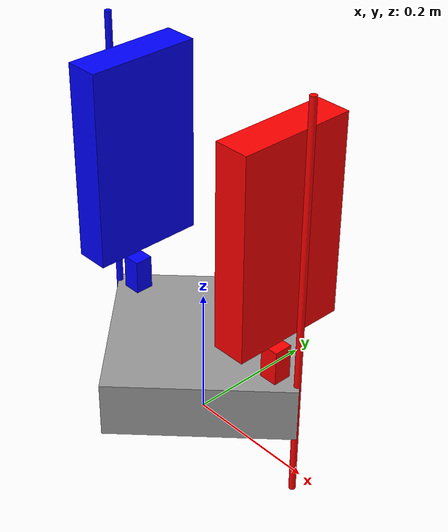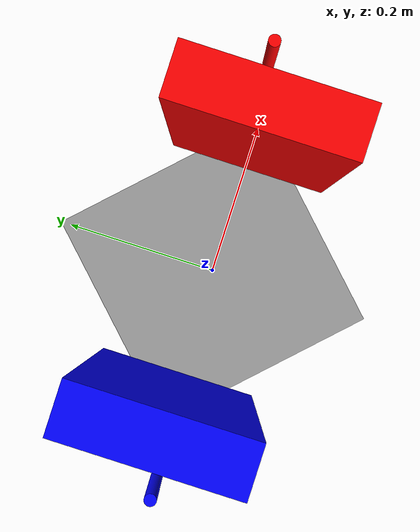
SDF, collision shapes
<?xml version='1.0'?>
<sdf version='1.6'>

  <model name='ComplexAquaShokoTwoLegs'>

    <link name='Baselink'>
      <pose frame=''>0 0 0.1 0 -0 0</pose>
      <inertial>
        <mass>2.564</mass>
        <inertia>
          <ixx>0.062</ixx>
          <ixy>0</ixy>
          <ixz>0</ixz>
          <iyy>0.062</iyy>
          <iyz>0</iyz>
          <izz>0.048</izz>
        </inertia>
        <pose frame=''>0 0 0 0 -0 0</pose>
      </inertial>

      <velocity_decay>
        <linear>0.01</linear>
        <angular>0.002</angular>
      </velocity_decay>

      <self_collide>0</self_collide>
      <kinematic>0</kinematic>
      <enable_wind>0</enable_wind>
      <gravity>1</gravity>

      <visual name='visual'>
        <pose frame=''>0 0 -0.064 0 -0 0</pose>
        <geometry>
          <mesh>
            <uri>model://ComplexAquaShokoLongLeg/meshes/BaseLink.dae</uri>
            <scale>1 1 1</scale>
          </mesh>
        </geometry>
        <material>
          <lighting>1</lighting>
          <script>
            <uri>file://media/materials/scripts/gazebo.material</uri>
            <name>Gazebo/Grey</name>
          </script>
          <ambient>0 0 0 0</ambient>
          <diffuse>0.7 0.7 0.7 1</diffuse>
          <specular>0.01 0.01 0.01 1</specular>
          <emissive>0 0 0 1</emissive>
          <shader type='vertex'>
            <normal_map>__default__</normal_map>
          </shader>
        </material>
        <transparency>0</transparency>
        <cast_shadows>1</cast_shadows>
      </visual>
      <collision name='collision'>
        <laser_retro>0</laser_retro>
        <max_contacts>10</max_contacts>
        <pose frame=''>0 0 0 0 -0 0.785</pose>
        <geometry>
          <box>
            <size>0.27 0.27 0.084</size>
          </box>
        </geometry>
        <surface>
          <friction>
            <ode>
              <mu>1</mu>
              <mu2>1</mu2>
              <fdir1>0 0 0</fdir1>
              <slip1>0</slip1>
              <slip2>0</slip2>
            </ode>
            <torsional>
              <coefficient>1</coefficient>
              <patch_radius>0</patch_radius>
              <surface_radius>0</surface_radius>
              <use_patch_radius>1</use_patch_radius>
              <ode>
                <slip>0</slip>
              </ode>
            </torsional>
          </friction>
          <bounce>
            <restitution_coefficient>0</restitution_coefficient>
            <threshold>1e+06</threshold>
          </bounce>
          <contact>
            <collide_without_contact>0</collide_without_contact>
            <collide_without_contact_bitmask>1</collide_without_contact_bitmask>
            <collide_bitmask>1</collide_bitmask>
            <ode>
              <soft_cfm>0</soft_cfm>
              <soft_erp>0.8</soft_erp>
              <kp>1e+13</kp>
              <kd>1</kd>
              <max_vel>0.01</max_vel>
              <min_depth>0</min_depth>
            </ode>
            <bullet>
              <split_impulse>1</split_impulse>
              <split_impulse_penetration_threshold>-0.01</split_impulse_penetration_threshold>
              <soft_cfm>0</soft_cfm>
              <soft_erp>0.8</soft_erp>
              <kp>1e+13</kp>
              <kd>1</kd>
            </bullet>
          </contact>
        </surface>
      </collision>
    </link>

    <link name='HormToHorn1'>
      <pose frame=''>0.145 0 0.17 0 -0 3.14</pose>
      <inertial>
        <mass>0.003</mass>
        <inertia>
          <ixx>1e-3</ixx>
          <ixy>0</ixy>
          <ixz>0</ixz>
          <iyy>1e-3</iyy>
          <iyz>0</iyz>
          <izz>1e-3</izz>
        </inertia>
        <pose frame=''>0 0 0 0 -0 0</pose>
      </inertial>
      <self_collide>0</self_collide>
      <kinematic>0</kinematic>
      <enable_wind>0</enable_wind>
      <gravity>1</gravity>
      <visual name='visual'>
        <pose frame=''>0 0 -0.0535 0 -0 0</pose>
        <geometry>
          <mesh>
            <uri>model://ComplexAquaShokoLongLeg/meshes/HornToHornLink.dae</uri>
            <scale>1 1 1</scale>
          </mesh>
        </geometry>
        <material>
          <lighting>1</lighting>
          <script>
            <uri>file://media/materials/scripts/gazebo.material</uri>
            <name>Gazebo/Grey</name>
          </script>
          <ambient>1 0 0 1</ambient>
          <diffuse>0.7 0.7 0.7 1</diffuse>
          <specular>0.01 0.01 0.01 1</specular>
          <emissive>0 0 0 1</emissive>
          <shader type='vertex'>
            <normal_map>__default__</normal_map>
          </shader>
        </material>
        <transparency>0</transparency>
        <cast_shadows>1</cast_shadows>
      </visual>
      <collision name='collision'>
        <laser_retro>0</laser_retro>
        <max_contacts>10</max_contacts>
        <pose frame=''>0 0 0 0 -0 0</pose>
        <geometry>
          <box>
            <size>0.028 0.028 0.053</size>
          </box>
        </geometry>
        <surface>
          <friction>
            <ode>
              <mu>1</mu>
              <mu2>1</mu2>
              <fdir1>0 0 0</fdir1>
              <slip1>0</slip1>
              <slip2>0</slip2>
            </ode>
            <torsional>
              <coefficient>1</coefficient>
              <patch_radius>0</patch_radius>
              <surface_radius>0</surface_radius>
              <use_patch_radius>1</use_patch_radius>
              <ode>
                <slip>0</slip>
              </ode>
            </torsional>
          </friction>
          <bounce>
            <restitution_coefficient>0</restitution_coefficient>
            <threshold>1e+06</threshold>
          </bounce>
          <contact>
            <collide_without_contact>0</collide_without_contact>
            <collide_without_contact_bitmask>1</collide_without_contact_bitmask>
            <collide_bitmask>1</collide_bitmask>
            <ode>
              <soft_cfm>0</soft_cfm>
              <soft_erp>0.8</soft_erp>
              <kp>1e+13</kp>
              <kd>1</kd>
              <max_vel>0.01</max_vel>
              <min_depth>0</min_depth>
            </ode>
            <bullet>
              <split_impulse>1</split_impulse>
              <split_impulse_penetration_threshold>-0.01</split_impulse_penetration_threshold>
              <soft_cfm>0</soft_cfm>
              <soft_erp>0.8</soft_erp>
              <kp>1e+13</kp>
              <kd>1</kd>
            </bullet>
          </contact>
        </surface>
      </collision>
    </link>

    <link name='HormToHorn3'>
      <pose frame=''>-0.145 0 0.17 0 -0 0</pose>
      <inertial>
        <mass>0.003</mass>
        <inertia>
          <ixx>1e-3</ixx>
          <ixy>0</ixy>
          <ixz>0</ixz>
          <iyy>1e-3</iyy>
          <iyz>0</iyz>
          <izz>1e-3</izz>
        </inertia>
        <pose frame=''>0 0 0 0 -0 0</pose>
      </inertial>
      <self_collide>0</self_collide>
      <kinematic>0</kinematic>
      <enable_wind>0</enable_wind>
      <gravity>1</gravity>
      <visual name='visual'>
        <pose frame=''>0 0 -0.0535 0 -0 0</pose>
        <geometry>
          <mesh>
            <uri>model://ComplexAquaShokoLongLeg/meshes/HornToHornLink.dae</uri>
            <scale>1 1 1</scale>
          </mesh>
        </geometry>
        <material>
          <lighting>1</lighting>
          <script>
            <uri>file://media/materials/scripts/gazebo.material</uri>
            <name>Gazebo/Grey</name>
          </script>
          <ambient>0 0 1 1</ambient>
          <diffuse>0.7 0.7 0.7 1</diffuse>
          <specular>0.01 0.01 0.01 1</specular>
          <emissive>0 0 0 1</emissive>
          <shader type='vertex'>
            <normal_map>__default__</normal_map>
          </shader>
        </material>
        <transparency>0</transparency>
        <cast_shadows>1</cast_shadows>
      </visual>
      <collision name='collision'>
        <laser_retro>0</laser_retro>
        <max_contacts>10</max_contacts>
        <pose frame=''>0 0 0 0 -0 0</pose>
        <geometry>
          <box>
            <size>0.028 0.028 0.053</size>
          </box>
        </geometry>
        <surface>
          <friction>
            <ode>
              <mu>1</mu>
              <mu2>1</mu2>
              <fdir1>0 0 0</fdir1>
              <slip1>0</slip1>
              <slip2>0</slip2>
            </ode>
            <torsional>
              <coefficient>1</coefficient>
              <patch_radius>0</patch_radius>
              <surface_radius>0</surface_radius>
              <use_patch_radius>1</use_patch_radius>
              <ode>
                <slip>0</slip>
              </ode>
            </torsional>
          </friction>
          <bounce>
            <restitution_coefficient>0</restitution_coefficient>
            <threshold>1e+06</threshold>
          </bounce>
          <contact>
            <collide_without_contact>0</collide_without_contact>
            <collide_without_contact_bitmask>1</collide_without_contact_bitmask>
            <collide_bitmask>1</collide_bitmask>
            <ode>
              <soft_cfm>0</soft_cfm>
              <soft_erp>0.8</soft_erp>
              <kp>1e+13</kp>
              <kd>1</kd>
              <max_vel>0.01</max_vel>
              <min_depth>0</min_depth>
            </ode>
            <bullet>
              <split_impulse>1</split_impulse>
              <split_impulse_penetration_threshold>-0.01</split_impulse_penetration_threshold>
              <soft_cfm>0</soft_cfm>
              <soft_erp>0.8</soft_erp>
              <kp>1e+13</kp>
              <kd>1</kd>
            </bullet>
          </contact>
        </surface>
      </collision>
    </link>

    <link name='endLeg1'>
      <pose frame=''>0.180014 0.009444 0.22 0 -0 0</pose>
      <inertial>
        <mass>0.095</mass>
        <inertia>
          <ixx>0.037</ixx>
          <ixy>0</ixy>
          <ixz>0</ixz>
          <iyy>0.037</iyy>
          <iyz>0</iyz>
          <izz>2.75e-5</izz>
        </inertia>
        <pose frame=''>0 0 0 0 -0 0</pose>
      </inertial>

      <velocity_decay>
        <linear>0.01</linear>
        <angular>0.002</angular>
      </velocity_decay>

      <self_collide>0</self_collide>
      <kinematic>0</kinematic>
      <enable_wind>0</enable_wind>
      <gravity>1</gravity>
      <visual name='visual'>
        <pose frame=''>0 -0.0011 -0.337 0 -0 0</pose>
        <geometry>
          <mesh>
            <uri>model://ComplexAquaShokoLongLeg/meshes/endLegLink.dae</uri>
            <scale>1 1 1</scale>
          </mesh>
        </geometry>
        <material>
          <lighting>1</lighting>
          <script>
            <uri>file://media/materials/scripts/gazebo.material</uri>
            <name>Gazebo/Grey</name>
          </script>
          <ambient>1 0 0 1</ambient>
          <diffuse>0.7 0.7 0.7 1</diffuse>
          <specular>0.01 0.01 0.01 1</specular>
          <emissive>0 0 0 1</emissive>
          <shader type='vertex'>
            <normal_map>__default__</normal_map>
          </shader>
        </material>
        <transparency>0</transparency>
        <cast_shadows>1</cast_shadows>
      </visual>
      <collision name='collision'>
        <laser_retro>0</laser_retro>
        <max_contacts>10</max_contacts>
        <pose frame=''>-0.0001 -0.0012 0.045 0 -0 0</pose>
        <geometry>
          <cylinder>
            <radius>0.005</radius>
            <length>0.62</length>
          </cylinder>
        </geometry>
        <surface>
          <friction>
            <ode>
              <mu>0.5</mu>
              <mu2>0.5</mu2>
              <fdir1>0 0 0</fdir1>
              <slip1>0</slip1>
              <slip2>0</slip2>
            </ode>
            <torsional>
              <coefficient>1</coefficient>
              <patch_radius>0</patch_radius>
              <surface_radius>0</surface_radius>
              <use_patch_radius>1</use_patch_radius>
              <ode>
                <slip>0</slip>
              </ode>
            </torsional>
          </friction>
          <bounce>
            <restitution_coefficient>0</restitution_coefficient>
            <threshold>1e+20</threshold>
          </bounce>
          <contact>
            <collide_without_contact>0</collide_without_contact>
            <collide_without_contact_bitmask>1</collide_without_contact_bitmask>
            <collide_bitmask>1</collide_bitmask>
            <ode>
              <soft_cfm>0</soft_cfm>
              <soft_erp>0.8</soft_erp>
              <kp>1e+13</kp>
              <kd>1</kd>
              <max_vel>0.01</max_vel>
              <min_depth>0</min_depth>
            </ode>
            <bullet>
              <split_impulse>1</split_impulse>
              <split_impulse_penetration_threshold>-0.01</split_impulse_penetration_threshold>
              <soft_cfm>0</soft_cfm>
              <soft_erp>0.8</soft_erp>
              <kp>1e+13</kp>
              <kd>1</kd>
            </bullet>
          </contact>
        </surface>
      </collision>
    </link>

    <link name='endLeg3'>
      <pose frame=''>-0.18 -0.0095 0.22 0 -0 3.14</pose>
      <inertial>
        <mass>0.095</mass>
        <inertia>
          <ixx>0.037</ixx>
          <ixy>0</ixy>
          <ixz>0</ixz>
          <iyy>0.037</iyy>
          <iyz>0</iyz>
          <izz>2.75e-5</izz>
        </inertia>
        <pose frame=''>0 0 0 0 -0 0</pose>
      </inertial>

      <velocity_decay>
        <linear>0.01</linear>
        <angular>0.002</angular>
      </velocity_decay>

      <self_collide>0</self_collide>
      <kinematic>0</kinematic>
      <enable_wind>0</enable_wind>
      <gravity>1</gravity>
      <visual name='visual'>
        <pose frame=''>0 -0.0011 -0.337 0 -0 0</pose>
        <geometry>
          <mesh>
            <uri>model://ComplexAquaShokoLongLeg/meshes/endLegLink.dae</uri>
            <scale>1 1 1</scale>
          </mesh>
        </geometry>
        <material>
          <lighting>1</lighting>
          <script>
            <uri>file://media/materials/scripts/gazebo.material</uri>
            <name>Gazebo/Grey</name>
          </script>
          <ambient>0 0 1 1</ambient>
          <diffuse>0.7 0.7 0.7 1</diffuse>
          <specular>0.01 0.01 0.01 1</specular>
          <emissive>0 0 0 1</emissive>
          <shader type='vertex'>
            <normal_map>__default__</normal_map>
          </shader>
        </material>
        <transparency>0</transparency>
        <cast_shadows>1</cast_shadows>
      </visual>
      <collision name='collision'>
        <laser_retro>0</laser_retro>
        <max_contacts>10</max_contacts>
        <pose frame=''>-0.0001 -0.0012 0.045 0 -0 0</pose>
        <geometry>
          <cylinder>
            <radius>0.005</radius>
            <length>0.62</length>
          </cylinder>
        </geometry>
        <surface>
          <friction>
            <ode>
              <mu>0.5</mu>
              <mu2>0.5</mu2>
              <fdir1>0 0 0</fdir1>
              <slip1>0</slip1>
              <slip2>0</slip2>
            </ode>
            <torsional>
              <coefficient>1</coefficient>
              <patch_radius>0</patch_radius>
              <surface_radius>0</surface_radius>
              <use_patch_radius>1</use_patch_radius>
              <ode>
                <slip>0</slip>
              </ode>
            </torsional>
          </friction>
          <bounce>
            <restitution_coefficient>0</restitution_coefficient>
            <threshold>1e+20</threshold>
          </bounce>
          <contact>
            <collide_without_contact>0</collide_without_contact>
            <collide_without_contact_bitmask>1</collide_without_contact_bitmask>
            <collide_bitmask>1</collide_bitmask>
            <ode>
              <soft_cfm>0</soft_cfm>
              <soft_erp>0.8</soft_erp>
              <kp>1e+13</kp>
              <kd>1</kd>
              <max_vel>0.01</max_vel>
              <min_depth>0</min_depth>
            </ode>
            <bullet>
              <split_impulse>1</split_impulse>
              <split_impulse_penetration_threshold>-0.01</split_impulse_penetration_threshold>
              <soft_cfm>0</soft_cfm>
              <soft_erp>0.8</soft_erp>
              <kp>1e+13</kp>
              <kd>1</kd>
            </bullet>
          </contact>
        </surface>
      </collision>
    </link>

    <link name='middleLeg1'>
      <pose frame=''>0.144995 -0.0025 0.312 0 -0 3.14</pose>
      <inertial>
        <mass>1.396</mass>
        <inertia>
          <ixx>0.079</ixx>
          <ixy>0</ixy>
          <ixz>0</ixz>
          <iyy>0.064</iyy>
          <iyz>0</iyz>
          <izz>0.018</izz>
        </inertia>
        <pose frame=''>0 0 0 0 -0 0</pose>
      </inertial>

      <velocity_decay>
        <linear>0.01</linear>
        <angular>0.002</angular>
      </velocity_decay>

      <self_collide>0</self_collide>
      <kinematic>0</kinematic>
      <enable_wind>0</enable_wind>
      <gravity>1</gravity>
      <visual name='visual'>
        <pose frame=''>0 0 -0.054 0 -0 0</pose>
        <geometry>
          <mesh>
            <uri>model://ComplexAquaShokoLongLeg/meshes/middleLegLink.dae</uri>
            <scale>1 1 1</scale>
          </mesh>
        </geometry>
        <material>
          <lighting>1</lighting>
          <script>
            <uri>file://media/materials/scripts/gazebo.material</uri>
            <name>Gazebo/Grey</name>
          </script>
          <ambient>1 0 0 1</ambient>
          <diffuse>0.7 0.7 0.7 1</diffuse>
          <specular>0.01 0.01 0.01 1</specular>
          <emissive>0 0 0 1</emissive>
          <shader type='vertex'>
            <normal_map>__default__</normal_map>
          </shader>
        </material>
        <transparency>0</transparency>
        <cast_shadows>1</cast_shadows>
      </visual>
      <collision name='collision'>
        <laser_retro>0</laser_retro>
        <max_contacts>10</max_contacts>
        <pose frame=''>0 0 0.064 0 -0 0</pose>
        <geometry>
          <box>
            <size>0.051 0.173 0.30</size>
          </box>
        </geometry>
        <surface>
          <friction>
            <ode>
              <mu>1</mu>
              <mu2>1</mu2>
              <fdir1>0 0 0</fdir1>
              <slip1>0</slip1>
              <slip2>0</slip2>
            </ode>
            <torsional>
              <coefficient>1</coefficient>
              <patch_radius>0</patch_radius>
              <surface_radius>0</surface_radius>
              <use_patch_radius>1</use_patch_radius>
              <ode>
                <slip>0</slip>
              </ode>
            </torsional>
          </friction>
          <bounce>
            <restitution_coefficient>0</restitution_coefficient>
            <threshold>1e+06</threshold>
          </bounce>
          <contact>
            <collide_without_contact>0</collide_without_contact>
            <collide_without_contact_bitmask>1</collide_without_contact_bitmask>
            <collide_bitmask>1</collide_bitmask>
            <ode>
              <soft_cfm>0</soft_cfm>
              <soft_erp>0.8</soft_erp>
              <kp>1e+13</kp>
              <kd>1</kd>
              <max_vel>0.01</max_vel>
              <min_depth>0</min_depth>
            </ode>
            <bullet>
              <split_impulse>1</split_impulse>
              <split_impulse_penetration_threshold>-0.01</split_impulse_penetration_threshold>
              <soft_cfm>0</soft_cfm>
              <soft_erp>0.8</soft_erp>
              <kp>1e+13</kp>
              <kd>1</kd>
            </bullet>
          </contact>
        </surface>
      </collision>
    </link>

    <link name='middleLeg3'>
      <pose frame=''>-0.145 0.0025 0.312 0 -0 0</pose>
      <inertial>
        <mass>1.396</mass>
        <inertia>
          <ixx>0.079</ixx>
          <ixy>0</ixy>
          <ixz>0</ixz>
          <iyy>0.064</iyy>
          <iyz>0</iyz>
          <izz>0.018</izz>
        </inertia>
        <pose frame=''>0 0 0 0 -0 0</pose>
      </inertial>

      <velocity_decay>
        <linear>0.01</linear>
        <angular>0.002</angular>
      </velocity_decay>

      <self_collide>0</self_collide>
      <kinematic>0</kinematic>
      <enable_wind>0</enable_wind>
      <gravity>1</gravity>
      <visual name='visual'>
        <pose frame=''>0 0 -0.054 0 -0 0</pose>
        <geometry>
          <mesh>
            <uri>model://ComplexAquaShokoLongLeg/meshes/middleLegLink.dae</uri>
            <scale>1 1 1</scale>
          </mesh>
        </geometry>
        <material>
          <lighting>1</lighting>
          <script>
            <uri>file://media/materials/scripts/gazebo.material</uri>
            <name>Gazebo/Grey</name>
          </script>
          <ambient>0 0 1 1</ambient>
          <diffuse>0.7 0.7 0.7 1</diffuse>
          <specular>0.01 0.01 0.01 1</specular>
          <emissive>0 0 0 1</emissive>
          <shader type='vertex'>
            <normal_map>__default__</normal_map>
          </shader>
        </material>
        <transparency>0</transparency>
        <cast_shadows>1</cast_shadows>
      </visual>
      <collision name='collision'>
        <laser_retro>0</laser_retro>
        <max_contacts>10</max_contacts>
        <pose frame=''>0 0 0.064 0 -0 0</pose>
        <geometry>
          <box>
            <size>0.051 0.173 0.3</size>
          </box>
        </geometry>
        <surface>
          <friction>
            <ode>
              <mu>1</mu>
              <mu2>1</mu2>
              <fdir1>0 0 0</fdir1>
              <slip1>0</slip1>
              <slip2>0</slip2>
            </ode>
            <torsional>
              <coefficient>1</coefficient>
              <patch_radius>0</patch_radius>
              <surface_radius>0</surface_radius>
              <use_patch_radius>1</use_patch_radius>
              <ode>
                <slip>0</slip>
              </ode>
            </torsional>
          </friction>
          <bounce>
            <restitution_coefficient>0</restitution_coefficient>
            <threshold>1e+06</threshold>
          </bounce>
          <contact>
            <collide_without_contact>0</collide_without_contact>
            <collide_without_contact_bitmask>1</collide_without_contact_bitmask>
            <collide_bitmask>1</collide_bitmask>
            <ode>
              <soft_cfm>0</soft_cfm>
              <soft_erp>0.8</soft_erp>
              <kp>1e+13</kp>
              <kd>1</kd>
              <max_vel>0.01</max_vel>
              <min_depth>0</min_depth>
            </ode>
            <bullet>
              <split_impulse>1</split_impulse>
              <split_impulse_penetration_threshold>-0.01</split_impulse_penetration_threshold>
              <soft_cfm>0</soft_cfm>
              <soft_erp>0.8</soft_erp>
              <kp>1e+13</kp>
              <kd>1</kd>
            </bullet>
          </contact>
        </surface>
      </collision>
    </link>

    <joint name='jaw11' type='revolute'>
      <parent>Baselink</parent>
      <child>HormToHorn1</child>
      <pose frame=''>0 0 -0.02 0 -0 0</pose>
      <axis>
        <xyz>0 0 1</xyz>
        <use_parent_model_frame>0</use_parent_model_frame>
        <limit>
          <lower>-1.79769e+308</lower>
          <upper>1.79769e+308</upper>
          <effort>10.0</effort>
          <velocity>-1</velocity>
        </limit>
        <dynamics>
          <spring_reference>0</spring_reference>
          <spring_stiffness>0.0</spring_stiffness>
          <friction>0.0</friction>
          <damping>0.2</damping>
        </dynamics>
      </axis>
      <physics>
        <ode>
          <limit>
            <cfm>0</cfm>
            <erp>0.8</erp>
          </limit>
          <suspension>
            <cfm>0</cfm>
            <erp>0.8</erp>
          </suspension>
        </ode>
        <provide_feedback>true</provide_feedback>
      </physics>
    </joint>

    <joint name='jaw31' type='revolute'>
      <parent>Baselink</parent>
      <child>HormToHorn3</child>
      <pose frame=''>0 0 -0.01 0 -0 0</pose>
      <axis>
        <xyz>0 0 1</xyz>
        <use_parent_model_frame>0</use_parent_model_frame>
        <limit>
          <lower>-1.79769e+308</lower>
          <upper>1.79769e+308</upper>
          <effort>10.0</effort>
          <velocity>-1</velocity>
        </limit>
        <dynamics>
          <spring_reference>0</spring_reference>
          <spring_stiffness>0.0</spring_stiffness>
          <friction>0.0</friction>
          <damping>0.2</damping>
        </dynamics>
      </axis>
      <physics>
        <ode>
          <limit>
            <cfm>0</cfm>
            <erp>0.8</erp>
          </limit>
          <suspension>
            <cfm>0</cfm>
            <erp>0.8</erp>
          </suspension>
        </ode>
        <provide_feedback>true</provide_feedback>
      </physics>
    </joint>

    <joint name='pitch12' type='revolute'>
      <parent>HormToHorn1</parent>
      <child>middleLeg1</child>
      <pose frame=''>0 0 -0.13 0 -0 0</pose>
      <axis>
        <xyz>0 1 0</xyz>
        <use_parent_model_frame>0</use_parent_model_frame>
        <limit>
          <lower>-4</lower>
          <upper>4</upper>
          <effort>20.0</effort>
          <velocity>-1</velocity>
        </limit>
        <dynamics>
          <spring_reference>0</spring_reference>
          <spring_stiffness>0.0</spring_stiffness>
          <friction>0.0</friction>
          <damping>0.2</damping>
        </dynamics>
      </axis>
      <physics>
        <ode>
          <limit>
            <cfm>0</cfm>
            <erp>0.8</erp>
          </limit>
          <suspension>
            <cfm>0</cfm>
            <erp>0.8</erp>
          </suspension>
        </ode>
      </physics>
    </joint>

    <joint name='pitch13' type='revolute'>
      <parent>middleLeg1</parent>
      <child>endLeg1</child>
      <pose frame=''>-0.035 0 0.348 0 -0 0</pose>
      <axis>
        <xyz>0 1 0</xyz>
        <use_parent_model_frame>0</use_parent_model_frame>
        <limit>
          <lower>-5</lower>
          <upper>0.04</upper>
          <effort>20.0</effort>
          <velocity>-1</velocity>
        </limit>
        <dynamics>
          <spring_reference>0</spring_reference>
          <spring_stiffness>0.0</spring_stiffness>
          <friction>0.0</friction>
          <damping>0.2</damping>
        </dynamics>
      </axis>
      <physics>
        <ode>
          <limit>
            <cfm>0</cfm>
            <erp>0.8</erp>
          </limit>
          <suspension>
            <cfm>0</cfm>
            <erp>0.8</erp>
          </suspension>
        </ode>
      </physics>
    </joint>

    <joint name='pitch32' type='revolute'>
      <parent>HormToHorn3</parent>
      <child>middleLeg3</child>
      <pose frame=''> 0 0 -0.13 0 -0 0</pose>
      <axis>
        <xyz>0 1 0</xyz>
        <use_parent_model_frame>0</use_parent_model_frame>
        <limit>
          <lower>-4</lower>
          <upper>4</upper>
          <effort>20.0</effort>
          <velocity>-1</velocity>
        </limit>
        <dynamics>
          <spring_reference>0</spring_reference>
          <spring_stiffness>0.0</spring_stiffness>
          <friction>0.0</friction>
          <damping>0.2</damping>
        </dynamics>
      </axis>
      <physics>
        <ode>
          <limit>
            <cfm>0</cfm>
            <erp>0.8</erp>
          </limit>
          <suspension>
            <cfm>0</cfm>
            <erp>0.8</erp>
          </suspension>
        </ode>
      </physics>
    </joint>

    <joint name='pitch33' type='revolute'>
      <parent>middleLeg3</parent>
      <child>endLeg3</child>
      <pose frame=''>-0.035 0 0.348 0 -0 0</pose>
      <axis>
        <xyz>0 1 0</xyz>
        <use_parent_model_frame>0</use_parent_model_frame>
        <limit>
          <lower>-5</lower>
          <upper>0.04</upper>
          <effort>20.0</effort>
          <velocity>-1</velocity>
        </limit>
        <dynamics>
          <spring_reference>0</spring_reference>
          <spring_stiffness>0.0</spring_stiffness>
          <friction>0.0</friction>
          <damping>0.2</damping>
        </dynamics>
      </axis>
      <physics>
        <ode>
          <limit>
            <cfm>0</cfm>
            <erp>0.8</erp>
          </limit>
          <suspension>
            <cfm>0</cfm>
            <erp>0.8</erp>
          </suspension>
        </ode>
      </physics>
    </joint>

  <plugin name='joint_control' filename='libaquashoko_gazebo_joint_control.so'/>

   <plugin name="BuoyancyPlugin" filename="libBuoyancyPlugin.so">
    <fluid_density>1000</fluid_density>

    <link name="Baselink">
      <center_of_volume>0 0 0 </center_of_volume>
      <volume>0.001</volume>
    </link>

     <link name="HormToHorn1">
      <center_of_volume>0 0 0 </center_of_volume>
      <volume>1e-20</volume>
    </link>

    <link name="HormToHorn3">
      <center_of_volume>0 0 0 </center_of_volume>
      <volume>1e-20</volume>
    </link>

    <link name="middleLeg1">
      <center_of_volume>0 0.02 0.02 </center_of_volume>
      <volume> 0.001494</volume>
    </link>

    <link name="middleLeg3">
      <center_of_volume>0 0.02 0.02 </center_of_volume>
      <volume>0.001494</volume>
    </link>

    <link name="endLeg1">
      <center_of_volume>0 0 0 </center_of_volume>
      <volume>1e-20</volume>
    </link>

    <link name="endLeg3">
      <center_of_volume>0 0 0 </center_of_volume>
      <volume>1e-20</volume>
    </link>

  </plugin>

  <plugin name="imu_plugin" filename="libgazebo_ros_imu.so">
      <alwaysOn>true</alwaysOn>
      <bodyName>Baselink</bodyName>
      <topicName>imu</topicName>
      <serviceName>imu_service</serviceName>
      <gaussianNoise>0.0</gaussianNoise>
      <updateRate>50.0</updateRate>
  </plugin>

  <plugin name="odometry_plugin" filename="libgazebo_ros_p3d.so">
      <bodyName>Baselink</bodyName>
      <topicName>odometry</topicName>
      <updateRate>50.0</updateRate>
  </plugin>

  </model>
</sdf>
